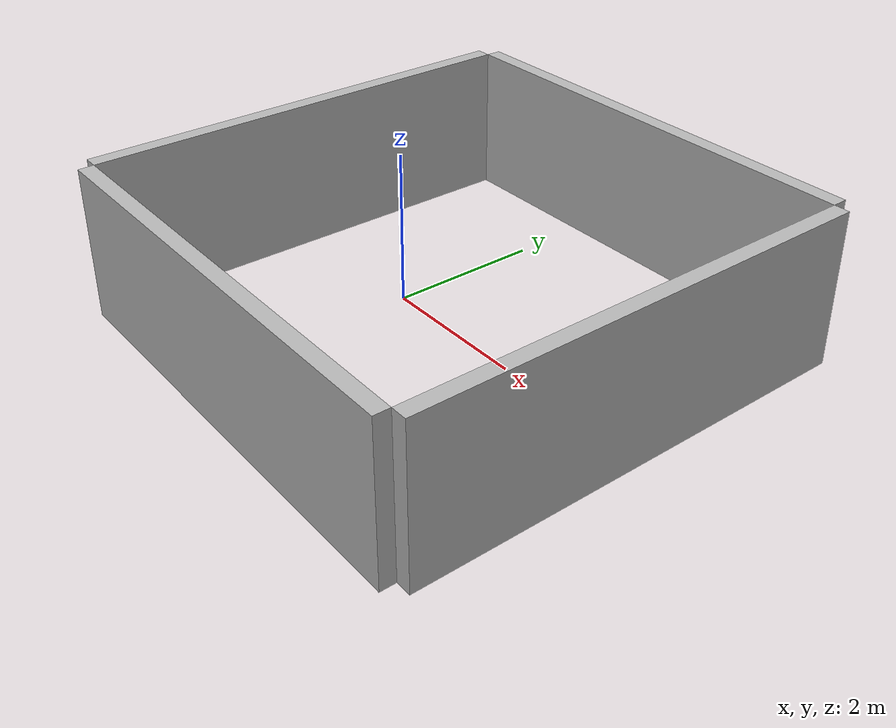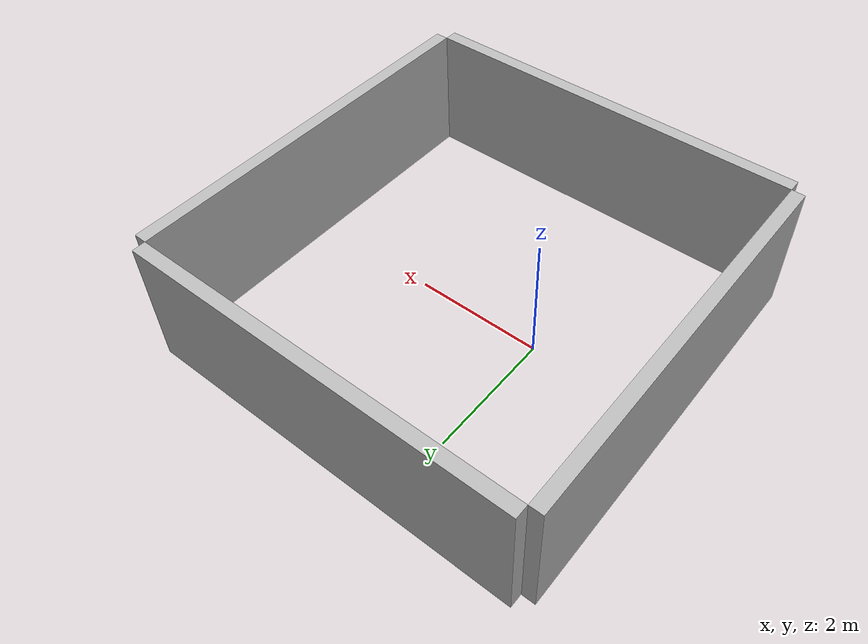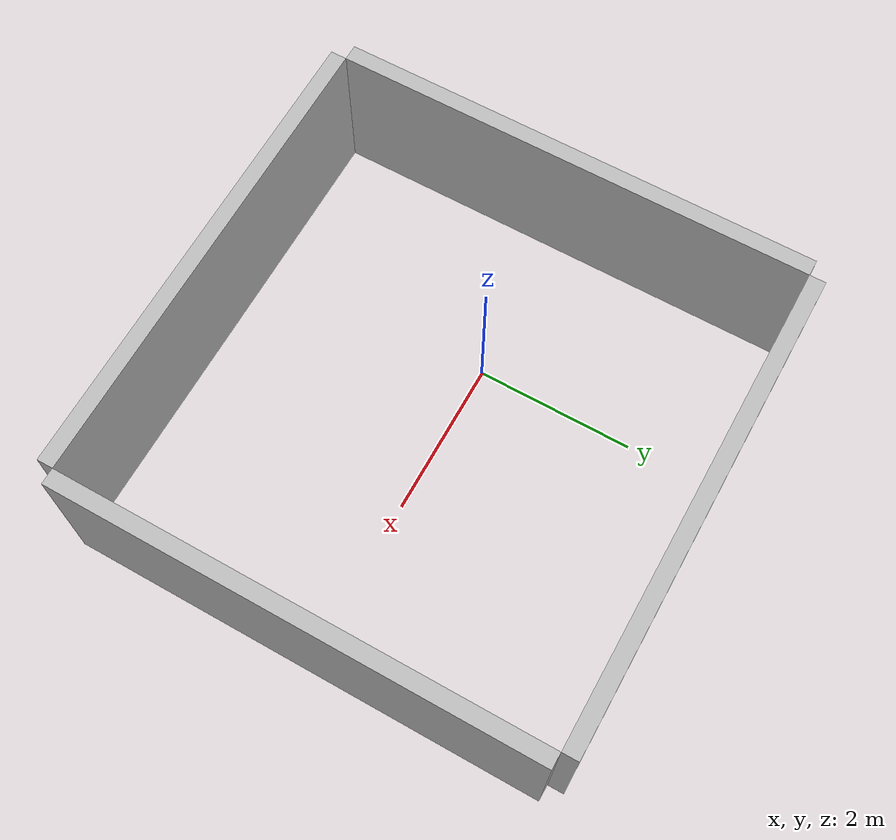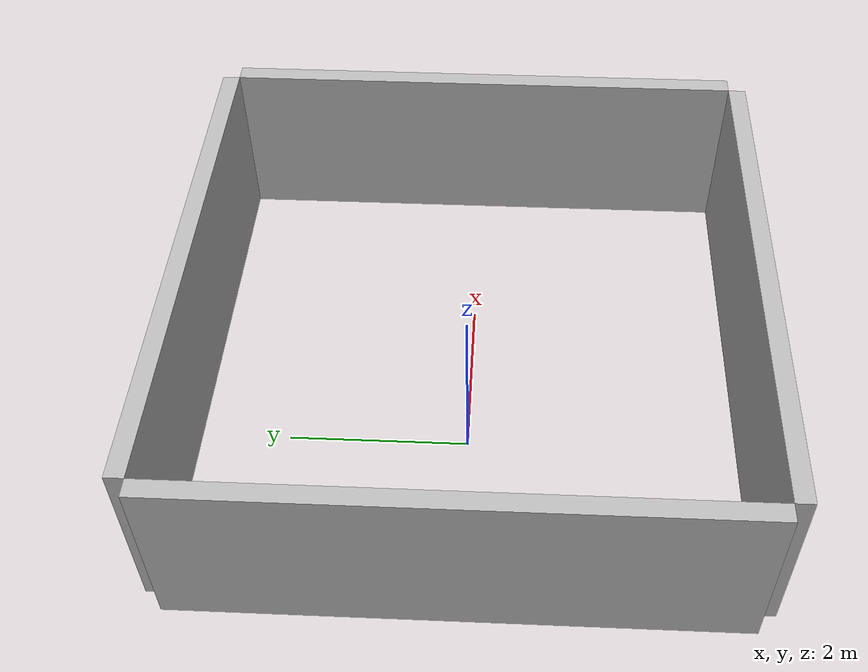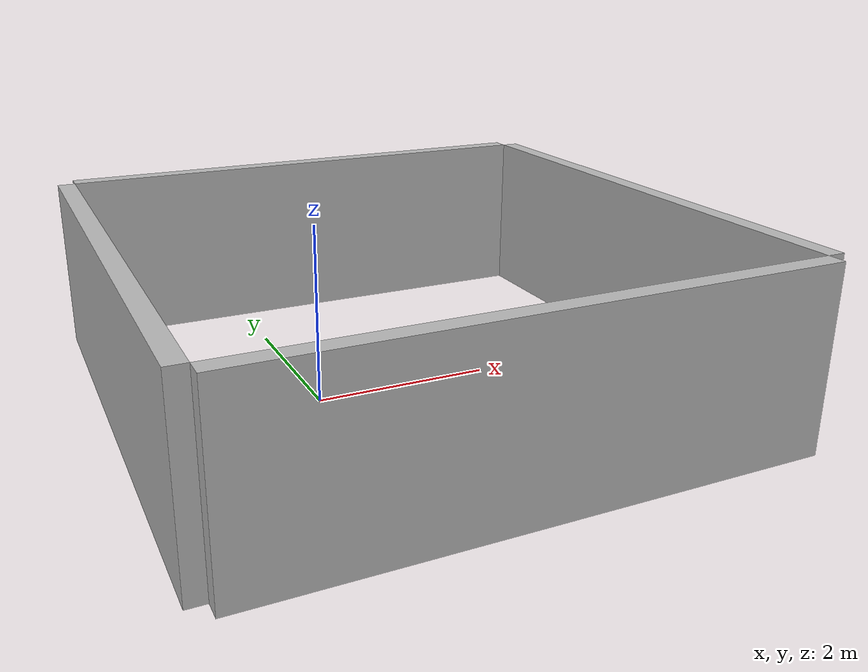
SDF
<sdf version='1.4'>
  <world name='default'>
    <light name='sun' type='directional'>
      <cast_shadows>1</cast_shadows>
      <pose>0 0 10 0 -0 0</pose>
      <diffuse>0.8 0.8 0.8 1</diffuse>
      <specular>0.2 0.2 0.2 1</specular>
      <attenuation>
        <range>1000</range>
        <constant>0.9</constant>
        <linear>0.01</linear>
        <quadratic>0.001</quadratic>
      </attenuation>
      <direction>0.5 0.1 -0.9</direction>
    </light>
    <scene>
      <ambient>0.4 0.4 0.4 1</ambient>
      <background>0.7 0.7 0.7 1</background>
      <shadows>1</shadows>
    </scene>
    <physics type='ode'>
      <max_step_size>0.01</max_step_size>
      <real_time_factor>1</real_time_factor>
      <real_time_update_rate>100</real_time_update_rate>
      <gravity>0 0 -9.8</gravity>
    </physics>
    <model name='room'>
      <static>1</static>
      <link name='left_wall'>
        <inertial>
          <mass>1</mass>
        </inertial>
        <collision name='collision'>
          <geometry>
            <box>
              <size>6 0.2 2</size>
            </box>
          </geometry>
        </collision>
        <visual name='visual'>
          <geometry>
            <box>
              <size>6 0.2 2</size>
            </box>
          </geometry>
        </visual>
        <pose>0 -3.1 0 0 0 0</pose>
      </link>
      <link name='right_wall'>
        <inertial>
          <mass>1</mass>
        </inertial>
        <collision name='collision'>
          <geometry>
            <box>
              <size>6 0.2 2</size>
            </box>
          </geometry>
        </collision>
        <visual name='visual'>
          <geometry>
            <box>
              <size>6 0.2 2</size>
            </box>
          </geometry>
        </visual>
        <pose>0 3.1 0 0 0 0</pose>
      </link>
      <link name='front_wall'>
        <inertial>
          <mass>1</mass>
        </inertial>
        <collision name='collision'>
          <geometry>
            <box>
              <size>0.2 6 2</size>
            </box>
          </geometry>
        </collision>
        <visual name='visual'>
          <geometry>
            <box>
              <size>0.2 6 2</size>
            </box>
          </geometry>
        </visual>
        <pose>3.1 0 0 0 0 0</pose>
      </link>
      <link name='back_wall'>
        <inertial>
          <mass>1</mass>
        </inertial>
        <collision name='collision'>
          <geometry>
            <box>
              <size>0.2 6 2</size>
            </box>
          </geometry>
        </collision>
        <visual name='visual'>
          <geometry>
            <box>
              <size>0.2 6 2</size>
            </box>
          </geometry>
        </visual>
        <pose>-3.1 0 0 0 0 0</pose>
      </link>
      <pose>1 0 1 0 0 0</pose>
    </model>
    <gui fullscreen='0'>
      <camera name='user_camera'>
        <pose>1.33336 -0.422442 27.6101 3e-06 1.5698 3.04015</pose>
        <view_controller>orbit</view_controller>
      </camera>
    </gui>
  </world>
</sdf>
